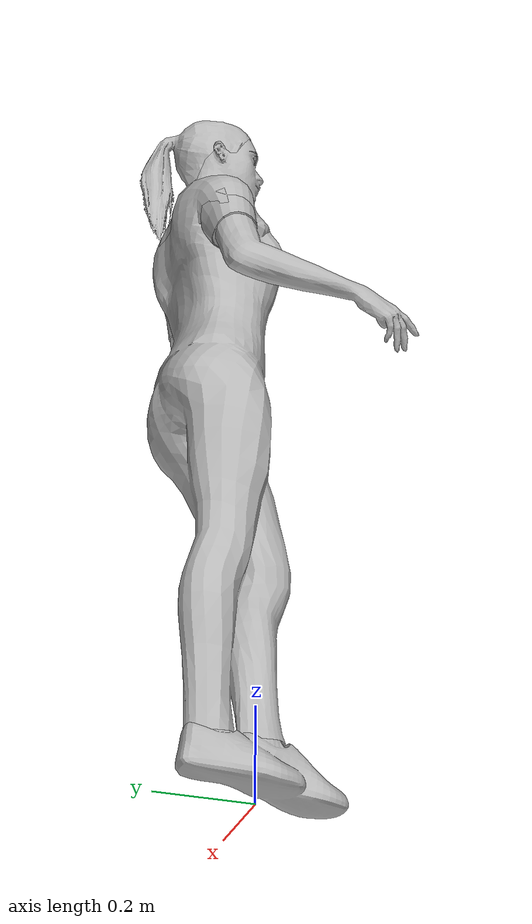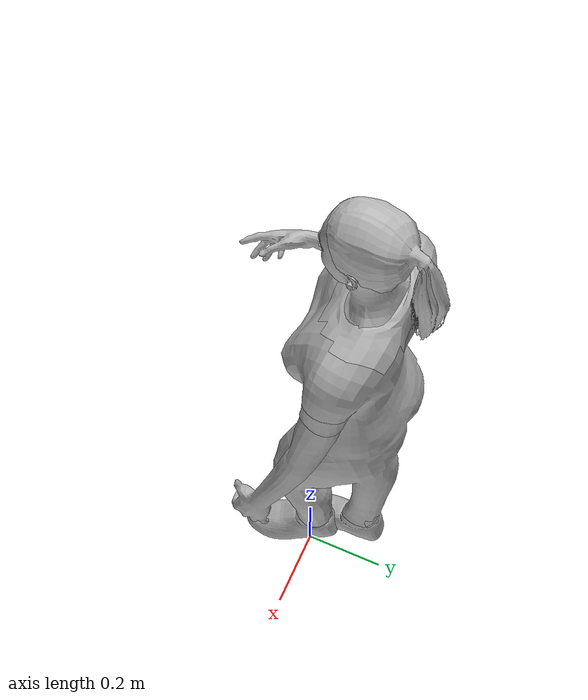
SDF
<?xml version="1.0"?>
<sdf version="1.9">
  <model name="worker_female">
    <static>true</static>
    <link name="link">
      <collision name="collision"><pose>0 0 0.9 0 0 0</pose><geometry><cylinder><radius>0.30</radius><length>1.8</length></cylinder></geometry></collision>
      <!-- Gazebo Fuel OpenRobotics person (CC0), hi-vis orange clothing (hi_vis_*). -->
      <visual name="mesh_0"><geometry><mesh><uri>meshes/worker_female_0.obj</uri></mesh></geometry><material><pbr><metal><albedo_map>materials/textures/worker_female_0.png</albedo_map></metal></pbr></material></visual>
      <visual name="mesh_1"><geometry><mesh><uri>meshes/worker_female_1.obj</uri></mesh></geometry><material><pbr><metal><albedo_map>materials/textures/worker_female_1.png</albedo_map></metal></pbr></material></visual>
      <visual name="mesh_2"><geometry><mesh><uri>meshes/worker_female_2.obj</uri></mesh></geometry><material><pbr><metal><albedo_map>materials/textures/worker_female_2.png</albedo_map></metal></pbr></material></visual>
      <visual name="mesh_3"><geometry><mesh><uri>meshes/worker_female_3.obj</uri></mesh></geometry><material><pbr><metal><albedo_map>materials/textures/worker_female_3.png</albedo_map></metal></pbr></material></visual>
      <visual name="mesh_4"><geometry><mesh><uri>meshes/worker_female_4.obj</uri></mesh></geometry><material><pbr><metal><albedo_map>materials/textures/worker_female_4.png</albedo_map></metal></pbr></material></visual>
      <visual name="mesh_5"><geometry><mesh><uri>meshes/worker_female_5.obj</uri></mesh></geometry><material><pbr><metal><albedo_map>materials/textures/worker_female_5.png</albedo_map></metal></pbr></material></visual>
      <visual name="hi_vis_suit_lower"><geometry><mesh><uri>meshes/worker_female_6.obj</uri></mesh></geometry><material><pbr><metal><albedo_map>materials/textures/worker_female_6.png</albedo_map></metal></pbr></material></visual>
      <visual name="hi_vis_suit_upper"><geometry><mesh><uri>meshes/worker_female_7.obj</uri></mesh></geometry><material><pbr><metal><albedo_map>materials/textures/worker_female_7.png</albedo_map></metal></pbr></material></visual>
      <visual name="mesh_8"><geometry><mesh><uri>meshes/worker_female_8.obj</uri></mesh></geometry><material><pbr><metal><albedo_map>materials/textures/worker_female_8.png</albedo_map></metal></pbr></material></visual>
    </link>
  </model>
</sdf>
